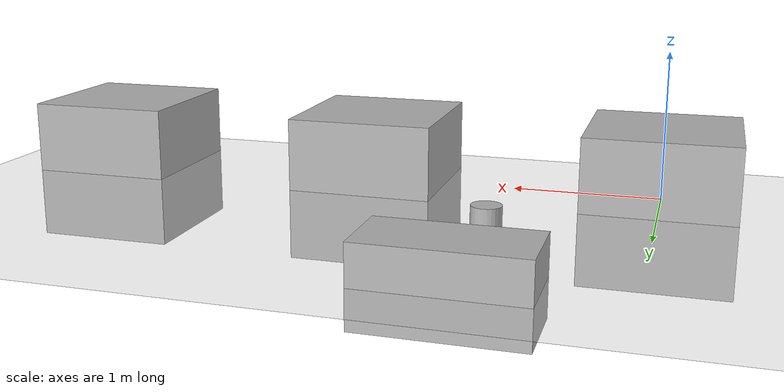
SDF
<sdf version='1.6'>
  <world name='bottle_factory'>
    <include>
      <uri>model://ground_plane</uri>
    </include>
    <include>
      <uri>model://sun</uri>
    </include>

    <model name='production_station_1'>
      <pose>0 0 0 0 0 0</pose>
      <link name='link'>
        <visual name='visual'>
          <geometry>
            <box>
              <size>1 1 1</size>
            </box>
          </geometry>
        </visual>
      </link>
    </model>

    <model name='production_station_2'>
      <pose>2 0 0 0 0 0</pose>
      <link name='link'>
        <visual name='visual'>
          <geometry>
            <box>
              <size>1 1 1</size>
            </box>
          </geometry>
        </visual>
      </link>
    </model>

    <model name='production_station_3'>
      <pose>4 0 0 0 0 0</pose>
      <link name='link'>
        <visual name='visual'>
          <geometry>
            <box>
              <size>1 1 1</size>
            </box>
          </geometry>
        </visual>
      </link>
    </model>

    <model name='conveyor_belt'>
      <pose>1 2 0 0 0 0</pose>
      <link name='link'>
        <visual name='visual'>
          <geometry>
            <box>
              <size>1 0.5 0.5</size>
            </box>
          </geometry>
        </visual>
      </link>
    </model>

    <model name='bottle'>
      <pose>1 1 0 0 0 0</pose>
      <link name='link'>
        <visual name='visual'>
          <geometry>
            <cylinder>
              <radius>0.1</radius>
              <length>0.3</length>
            </cylinder>
          </geometry>
        </visual>
      </link>
    </model>

  </world>
</sdf>
